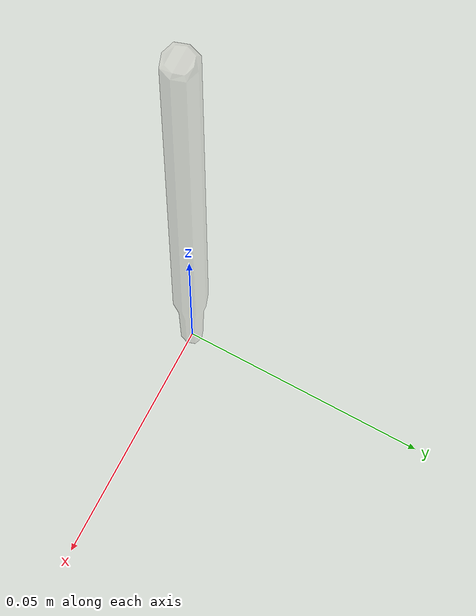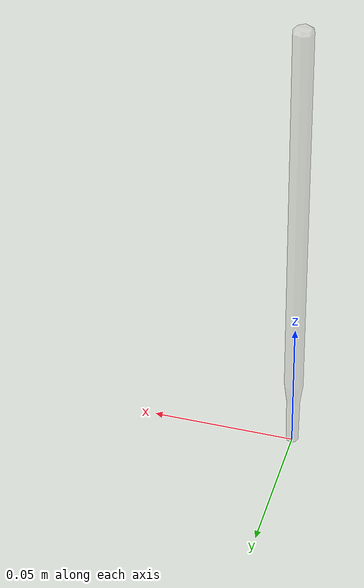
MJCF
<?xml version="1.0" ?>
<mujoco model="thermometer">
  <asset>
    <texture type="2d" name="material_0" file="material_0.png"/>
    <material name="material_0" texture="material_0" specular="0.4" shininess="0.001" rgba="1 1 1 0.3"/>
    <mesh file="thermometer.obj"/>
    <mesh file="thermometer/thermometer_collision_0.obj"/>
  </asset>
  <worldbody>
    <body name="thermometer">
      <inertial pos="0 0 0.085504" mass="0.02" diaginertia="0.0008 0.0008 0.0005"/>
      <geom material="material_0" mesh="thermometer" class="visual"/>
      <geom mesh="thermometer_collision_0" class="collision"/>
      <site class="grasppoint" pos="0.0000 0.0000 0.1580"/>
    </body>
  </worldbody>
  <compiler boundmass="0.015" boundinertia="1e-05" angle="radian"/>
  <default>
    <default class="visual">
      <geom group="2" type="mesh" contype="0" conaffinity="0" density="50"/>
    </default>
    <default class="collision">
      <geom group="3" type="mesh" density="50" friction="1.5 0.1 0.1" solimp="0.9 0.95 0.001" solref="0.02 1"/>
    </default>
    <default class="grasppoint">
      <site type="sphere" size="0.005" group="4" rgba="0 0 1 1"/>
    </default>
  </default>
</mujoco>
